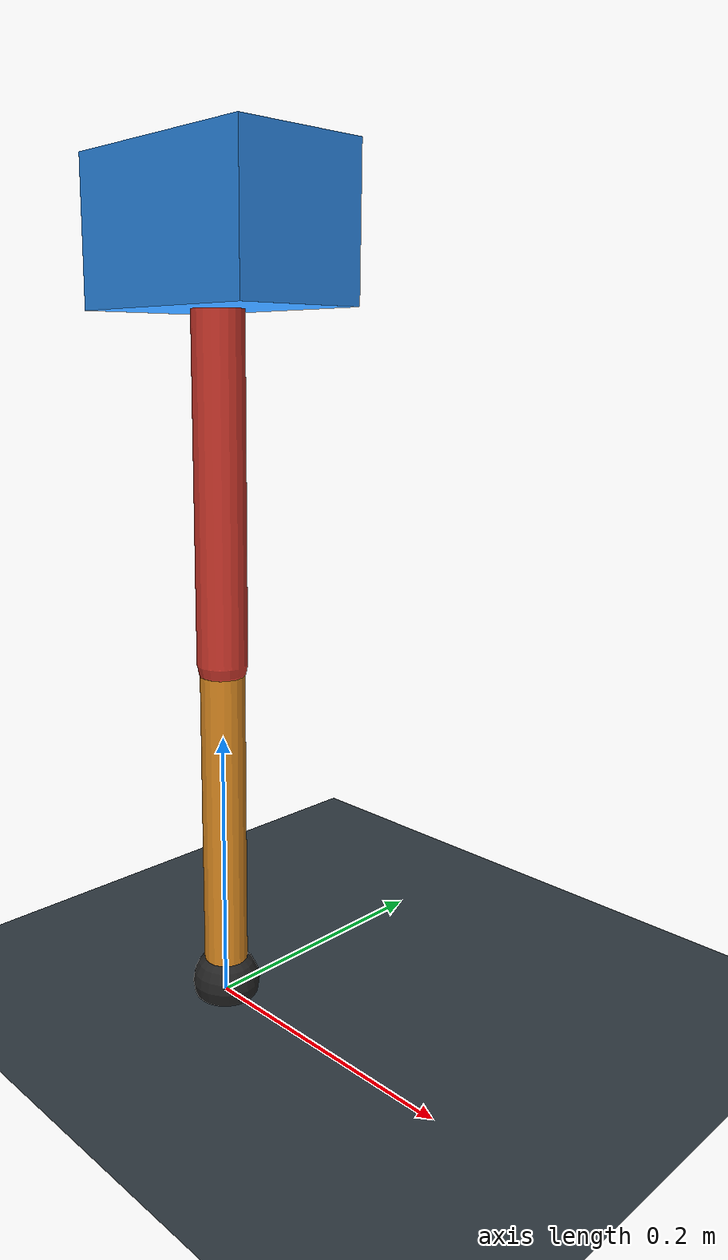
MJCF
<mujoco model="single_axis_two_bar">
  <compiler angle="radian" inertiafromgeom="true"/>
  <option timestep="0.001" integrator="implicitfast" gravity="0 0 -9.81"/>
  <default>
    <joint damping="0.08"/>
    <geom friction="1.2 0.01 0.0001" condim="3"/>
  </default>
  <worldbody>
    <geom name="floor" type="plane" size="5 5 0.1" rgba="0.18 0.22 0.25 1"/>
    <body name="carriage" pos="0 0 0.5464928072215737">
      <joint name="pole_slide" type="slide" axis="0 0 1"/>
      <geom name="payload" type="box" size="0.08 0.05 0.05" mass="3.527763023518245" rgba="0.2 0.6 1 1"/>
      <body name="thigh" pos="0 0 0">
        <joint name="hip" type="hinge" axis="0 1 0"/>
        <geom name="thigh_link" type="capsule" fromto="0 0 0 0 0 -0.29147937173352434" size="0.018" mass="0.2076829039202167" rgba="0.9 0.25 0.2 1"/>
        <body name="shank" pos="0 0 -0.29147937173352434">
          <joint name="knee" type="hinge" axis="0 1 0"/>
          <geom name="shank_link" type="capsule" fromto="0 0 0 0 0 -0.24614207901036605" size="0.016" mass="0.1753794837754989" rgba="0.95 0.6 0.15 1"/>
          <geom name="foot" type="sphere" pos="0 0 -0.24614207901036605" size="0.025" mass="0.03" rgba="0.15 0.15 0.15 1"/>
          <site name="toe" pos="0 0 -0.24614207901036605" size="0.008"/>
        </body>
      </body>
    </body>
  </worldbody>
  <actuator>
    <motor name="hip_motor" joint="hip" ctrlrange="-18.148199039065172 18.148199039065172"/>
    <motor name="knee_motor" joint="knee" ctrlrange="-29.303507127335195 29.303507127335195"/>
  </actuator>
</mujoco>
